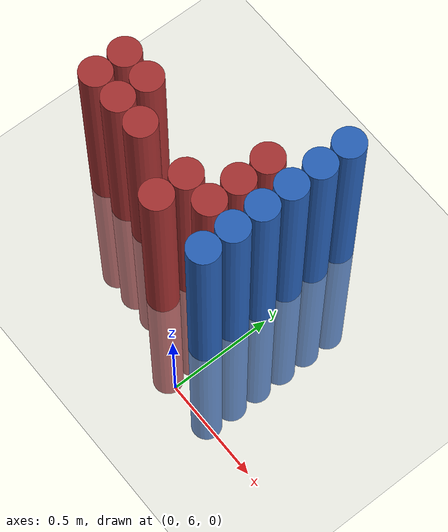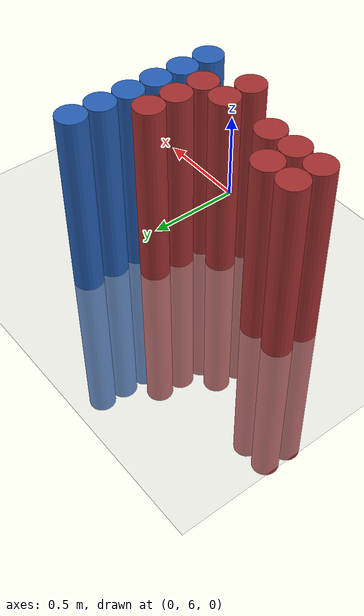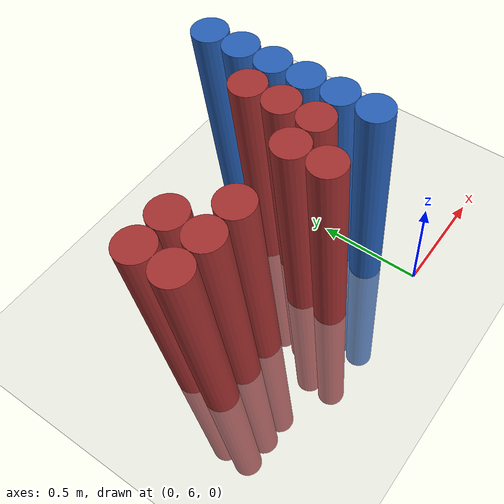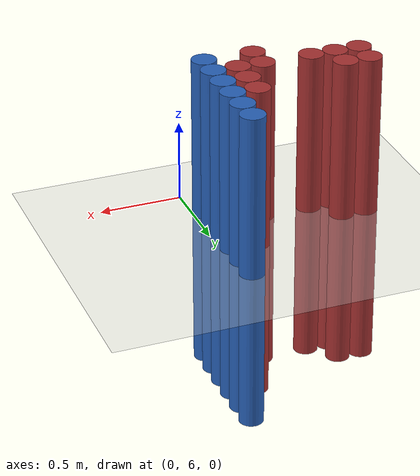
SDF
<sdf version="1.6">
 <world name="default">
  <model name="ground_plane">
   <static>1</static>
   <link name="link">
    <collision name="collision">
     <geometry><plane><normal>0 0 1</normal><size>100 100</size></plane></geometry>
     <surface><friction><ode><mu>100</mu><mu2>50</mu2></ode></friction></surface>
    </collision>
    <visual name="visual">
     <cast_shadows>0</cast_shadows>
     <geometry><plane><normal>0 0 1</normal><size>100 100</size></plane></geometry>
     <material>
      <script><uri>file://media/materials/scripts/gazebo.material</uri><name>Gazebo/Grey</name></script>
     </material>
    </visual>
   </link>
  </model>
  <model name="unit_cylinder_185">
   <static>1</static>
   <pose>-0.975000 6.375000 0.000000 0.000000 0.000000 0.000000</pose>
   <link name="link">
    <inertial>
     <mass>1</mass>
     <inertia><ixx>0.145833</ixx><ixy>0</ixy><ixz>0</ixz><iyy>0.145833</iyy><iyz>0</iyz><izz>0.125</izz></inertia>
    </inertial>
    <collision name="collision">
     <geometry><cylinder><radius>0.075000</radius><length>2</length></cylinder></geometry>
    </collision>
    <visual name="visual">
     <geometry><cylinder><radius>0.075000</radius><length>2</length></cylinder></geometry>
     <material>
      <ambient>0.648000 0.192000 0.192000 1</ambient>
      <diffuse>0.648000 0.192000 0.192000 1</diffuse>
     </material>
     <material>
      <script><name>Gazebo/Grey</name><uri>file://media/materials/scripts/gazebo.material</uri></script>
     </material>
    </visual>
   </link>
  </model>
  <model name="unit_cylinder_186">
   <static>1</static>
   <pose>-0.975000 6.525000 0.000000 0.000000 0.000000 0.000000</pose>
   <link name="link">
    <inertial>
     <mass>1</mass>
     <inertia><ixx>0.145833</ixx><ixy>0</ixy><ixz>0</ixz><iyy>0.145833</iyy><iyz>0</iyz><izz>0.125</izz></inertia>
    </inertial>
    <collision name="collision">
     <geometry><cylinder><radius>0.075000</radius><length>2</length></cylinder></geometry>
    </collision>
    <visual name="visual">
     <geometry><cylinder><radius>0.075000</radius><length>2</length></cylinder></geometry>
     <material>
      <ambient>0.648000 0.192000 0.192000 1</ambient>
      <diffuse>0.648000 0.192000 0.192000 1</diffuse>
     </material>
     <material>
      <script><name>Gazebo/Grey</name><uri>file://media/materials/scripts/gazebo.material</uri></script>
     </material>
    </visual>
   </link>
  </model>
  <model name="unit_cylinder_192">
   <static>1</static>
   <pose>-0.825000 6.375000 0.000000 0.000000 0.000000 0.000000</pose>
   <link name="link">
    <inertial>
     <mass>1</mass>
     <inertia><ixx>0.145833</ixx><ixy>0</ixy><ixz>0</ixz><iyy>0.145833</iyy><iyz>0</iyz><izz>0.125</izz></inertia>
    </inertial>
    <collision name="collision">
     <geometry><cylinder><radius>0.075000</radius><length>2</length></cylinder></geometry>
    </collision>
    <visual name="visual">
     <geometry><cylinder><radius>0.075000</radius><length>2</length></cylinder></geometry>
     <material>
      <ambient>0.648000 0.192000 0.192000 1</ambient>
      <diffuse>0.648000 0.192000 0.192000 1</diffuse>
     </material>
     <material>
      <script><name>Gazebo/Grey</name><uri>file://media/materials/scripts/gazebo.material</uri></script>
     </material>
    </visual>
   </link>
  </model>
  <model name="unit_cylinder_193">
   <static>1</static>
   <pose>-0.825000 6.525000 0.000000 0.000000 0.000000 0.000000</pose>
   <link name="link">
    <inertial>
     <mass>1</mass>
     <inertia><ixx>0.145833</ixx><ixy>0</ixy><ixz>0</ixz><iyy>0.145833</iyy><iyz>0</iyz><izz>0.125</izz></inertia>
    </inertial>
    <collision name="collision">
     <geometry><cylinder><radius>0.075000</radius><length>2</length></cylinder></geometry>
    </collision>
    <visual name="visual">
     <geometry><cylinder><radius>0.075000</radius><length>2</length></cylinder></geometry>
     <material>
      <ambient>0.648000 0.192000 0.192000 1</ambient>
      <diffuse>0.648000 0.192000 0.192000 1</diffuse>
     </material>
     <material>
      <script><name>Gazebo/Grey</name><uri>file://media/materials/scripts/gazebo.material</uri></script>
     </material>
    </visual>
   </link>
  </model>
  <model name="unit_cylinder_199">
   <static>1</static>
   <pose>-0.675000 6.375000 0.000000 0.000000 0.000000 0.000000</pose>
   <link name="link">
    <inertial>
     <mass>1</mass>
     <inertia><ixx>0.145833</ixx><ixy>0</ixy><ixz>0</ixz><iyy>0.145833</iyy><iyz>0</iyz><izz>0.125</izz></inertia>
    </inertial>
    <collision name="collision">
     <geometry><cylinder><radius>0.075000</radius><length>2</length></cylinder></geometry>
    </collision>
    <visual name="visual">
     <geometry><cylinder><radius>0.075000</radius><length>2</length></cylinder></geometry>
     <material>
      <ambient>0.648000 0.192000 0.192000 1</ambient>
      <diffuse>0.648000 0.192000 0.192000 1</diffuse>
     </material>
     <material>
      <script><name>Gazebo/Grey</name><uri>file://media/materials/scripts/gazebo.material</uri></script>
     </material>
    </visual>
   </link>
  </model>
  <model name="unit_cylinder_208">
   <static>1</static>
   <pose>-0.375000 6.225000 0.000000 0.000000 0.000000 0.000000</pose>
   <link name="link">
    <inertial>
     <mass>1</mass>
     <inertia><ixx>0.145833</ixx><ixy>0</ixy><ixz>0</ixz><iyy>0.145833</iyy><iyz>0</iyz><izz>0.125</izz></inertia>
    </inertial>
    <collision name="collision">
     <geometry><cylinder><radius>0.075000</radius><length>2</length></cylinder></geometry>
    </collision>
    <visual name="visual">
     <geometry><cylinder><radius>0.075000</radius><length>2</length></cylinder></geometry>
     <material>
      <ambient>0.648000 0.192000 0.192000 1</ambient>
      <diffuse>0.648000 0.192000 0.192000 1</diffuse>
     </material>
     <material>
      <script><name>Gazebo/Grey</name><uri>file://media/materials/scripts/gazebo.material</uri></script>
     </material>
    </visual>
   </link>
  </model>
  <model name="unit_cylinder_209">
   <static>1</static>
   <pose>-0.375000 6.375000 0.000000 0.000000 0.000000 0.000000</pose>
   <link name="link">
    <inertial>
     <mass>1</mass>
     <inertia><ixx>0.145833</ixx><ixy>0</ixy><ixz>0</ixz><iyy>0.145833</iyy><iyz>0</iyz><izz>0.125</izz></inertia>
    </inertial>
    <collision name="collision">
     <geometry><cylinder><radius>0.075000</radius><length>2</length></cylinder></geometry>
    </collision>
    <visual name="visual">
     <geometry><cylinder><radius>0.075000</radius><length>2</length></cylinder></geometry>
     <material>
      <ambient>0.648000 0.192000 0.192000 1</ambient>
      <diffuse>0.648000 0.192000 0.192000 1</diffuse>
     </material>
     <material>
      <script><name>Gazebo/Grey</name><uri>file://media/materials/scripts/gazebo.material</uri></script>
     </material>
    </visual>
   </link>
  </model>
  <model name="unit_cylinder_216">
   <static>1</static>
   <pose>-0.225000 6.375000 0.000000 0.000000 0.000000 0.000000</pose>
   <link name="link">
    <inertial>
     <mass>1</mass>
     <inertia><ixx>0.145833</ixx><ixy>0</ixy><ixz>0</ixz><iyy>0.145833</iyy><iyz>0</iyz><izz>0.125</izz></inertia>
    </inertial>
    <collision name="collision">
     <geometry><cylinder><radius>0.075000</radius><length>2</length></cylinder></geometry>
    </collision>
    <visual name="visual">
     <geometry><cylinder><radius>0.075000</radius><length>2</length></cylinder></geometry>
     <material>
      <ambient>0.648000 0.192000 0.192000 1</ambient>
      <diffuse>0.648000 0.192000 0.192000 1</diffuse>
     </material>
     <material>
      <script><name>Gazebo/Grey</name><uri>file://media/materials/scripts/gazebo.material</uri></script>
     </material>
    </visual>
   </link>
  </model>
  <model name="unit_cylinder_217">
   <static>1</static>
   <pose>-0.225000 6.525000 0.000000 0.000000 0.000000 0.000000</pose>
   <link name="link">
    <inertial>
     <mass>1</mass>
     <inertia><ixx>0.145833</ixx><ixy>0</ixy><ixz>0</ixz><iyy>0.145833</iyy><iyz>0</iyz><izz>0.125</izz></inertia>
    </inertial>
    <collision name="collision">
     <geometry><cylinder><radius>0.075000</radius><length>2</length></cylinder></geometry>
    </collision>
    <visual name="visual">
     <geometry><cylinder><radius>0.075000</radius><length>2</length></cylinder></geometry>
     <material>
      <ambient>0.648000 0.192000 0.192000 1</ambient>
      <diffuse>0.648000 0.192000 0.192000 1</diffuse>
     </material>
     <material>
      <script><name>Gazebo/Grey</name><uri>file://media/materials/scripts/gazebo.material</uri></script>
     </material>
    </visual>
   </link>
  </model>
  <model name="unit_cylinder_218">
   <static>1</static>
   <pose>-0.225000 6.675000 0.000000 0.000000 0.000000 0.000000</pose>
   <link name="link">
    <inertial>
     <mass>1</mass>
     <inertia><ixx>0.145833</ixx><ixy>0</ixy><ixz>0</ixz><iyy>0.145833</iyy><iyz>0</iyz><izz>0.125</izz></inertia>
    </inertial>
    <collision name="collision">
     <geometry><cylinder><radius>0.075000</radius><length>2</length></cylinder></geometry>
    </collision>
    <visual name="visual">
     <geometry><cylinder><radius>0.075000</radius><length>2</length></cylinder></geometry>
     <material>
      <ambient>0.648000 0.192000 0.192000 1</ambient>
      <diffuse>0.648000 0.192000 0.192000 1</diffuse>
     </material>
     <material>
      <script><name>Gazebo/Grey</name><uri>file://media/materials/scripts/gazebo.material</uri></script>
     </material>
    </visual>
   </link>
  </model>
  <model name="unit_cylinder_237">
   <static>1</static>
   <pose>-0.075000 6.225000 0.000000 0.000000 0.000000 0.000000</pose>
   <link name="link">
    <inertial>
     <mass>1</mass>
     <inertia><ixx>0.145833</ixx><ixy>0</ixy><ixz>0</ixz><iyy>0.145833</iyy><iyz>0</iyz><izz>0.125</izz></inertia>
    </inertial>
    <collision name="collision">
     <geometry><cylinder><radius>0.075000</radius><length>2</length></cylinder></geometry>
    </collision>
    <visual name="visual">
     <geometry><cylinder><radius>0.075000</radius><length>2</length></cylinder></geometry>
     <material>
      <ambient>0.152000 0.379000 0.720000 1</ambient>
      <diffuse>0.152000 0.379000 0.720000 1</diffuse>
     </material>
     <material>
      <script><name>Gazebo/Grey</name><uri>file://media/materials/scripts/gazebo.material</uri></script>
     </material>
    </visual>
   </link>
  </model>
  <model name="unit_cylinder_238">
   <static>1</static>
   <pose>-0.075000 6.375000 0.000000 0.000000 0.000000 0.000000</pose>
   <link name="link">
    <inertial>
     <mass>1</mass>
     <inertia><ixx>0.145833</ixx><ixy>0</ixy><ixz>0</ixz><iyy>0.145833</iyy><iyz>0</iyz><izz>0.125</izz></inertia>
    </inertial>
    <collision name="collision">
     <geometry><cylinder><radius>0.075000</radius><length>2</length></cylinder></geometry>
    </collision>
    <visual name="visual">
     <geometry><cylinder><radius>0.075000</radius><length>2</length></cylinder></geometry>
     <material>
      <ambient>0.152000 0.379000 0.720000 1</ambient>
      <diffuse>0.152000 0.379000 0.720000 1</diffuse>
     </material>
     <material>
      <script><name>Gazebo/Grey</name><uri>file://media/materials/scripts/gazebo.material</uri></script>
     </material>
    </visual>
   </link>
  </model>
  <model name="unit_cylinder_239">
   <static>1</static>
   <pose>-0.075000 6.525000 0.000000 0.000000 0.000000 0.000000</pose>
   <link name="link">
    <inertial>
     <mass>1</mass>
     <inertia><ixx>0.145833</ixx><ixy>0</ixy><ixz>0</ixz><iyy>0.145833</iyy><iyz>0</iyz><izz>0.125</izz></inertia>
    </inertial>
    <collision name="collision">
     <geometry><cylinder><radius>0.075000</radius><length>2</length></cylinder></geometry>
    </collision>
    <visual name="visual">
     <geometry><cylinder><radius>0.075000</radius><length>2</length></cylinder></geometry>
     <material>
      <ambient>0.152000 0.379000 0.720000 1</ambient>
      <diffuse>0.152000 0.379000 0.720000 1</diffuse>
     </material>
     <material>
      <script><name>Gazebo/Grey</name><uri>file://media/materials/scripts/gazebo.material</uri></script>
     </material>
    </visual>
   </link>
  </model>
  <model name="unit_cylinder_240">
   <static>1</static>
   <pose>-0.075000 6.675000 0.000000 0.000000 0.000000 0.000000</pose>
   <link name="link">
    <inertial>
     <mass>1</mass>
     <inertia><ixx>0.145833</ixx><ixy>0</ixy><ixz>0</ixz><iyy>0.145833</iyy><iyz>0</iyz><izz>0.125</izz></inertia>
    </inertial>
    <collision name="collision">
     <geometry><cylinder><radius>0.075000</radius><length>2</length></cylinder></geometry>
    </collision>
    <visual name="visual">
     <geometry><cylinder><radius>0.075000</radius><length>2</length></cylinder></geometry>
     <material>
      <ambient>0.152000 0.379000 0.720000 1</ambient>
      <diffuse>0.152000 0.379000 0.720000 1</diffuse>
     </material>
     <material>
      <script><name>Gazebo/Grey</name><uri>file://media/materials/scripts/gazebo.material</uri></script>
     </material>
    </visual>
   </link>
  </model>
  <model name="unit_cylinder_241">
   <static>1</static>
   <pose>-0.075000 6.825000 0.000000 0.000000 0.000000 0.000000</pose>
   <link name="link">
    <inertial>
     <mass>1</mass>
     <inertia><ixx>0.145833</ixx><ixy>0</ixy><ixz>0</ixz><iyy>0.145833</iyy><iyz>0</iyz><izz>0.125</izz></inertia>
    </inertial>
    <collision name="collision">
     <geometry><cylinder><radius>0.075000</radius><length>2</length></cylinder></geometry>
    </collision>
    <visual name="visual">
     <geometry><cylinder><radius>0.075000</radius><length>2</length></cylinder></geometry>
     <material>
      <ambient>0.152000 0.379000 0.720000 1</ambient>
      <diffuse>0.152000 0.379000 0.720000 1</diffuse>
     </material>
     <material>
      <script><name>Gazebo/Grey</name><uri>file://media/materials/scripts/gazebo.material</uri></script>
     </material>
    </visual>
   </link>
  </model>
  <model name="unit_cylinder_242">
   <static>1</static>
   <pose>-0.075000 6.975000 0.000000 0.000000 0.000000 0.000000</pose>
   <link name="link">
    <inertial>
     <mass>1</mass>
     <inertia><ixx>0.145833</ixx><ixy>0</ixy><ixz>0</ixz><iyy>0.145833</iyy><iyz>0</iyz><izz>0.125</izz></inertia>
    </inertial>
    <collision name="collision">
     <geometry><cylinder><radius>0.075000</radius><length>2</length></cylinder></geometry>
    </collision>
    <visual name="visual">
     <geometry><cylinder><radius>0.075000</radius><length>2</length></cylinder></geometry>
     <material>
      <ambient>0.152000 0.379000 0.720000 1</ambient>
      <diffuse>0.152000 0.379000 0.720000 1</diffuse>
     </material>
     <material>
      <script><name>Gazebo/Grey</name><uri>file://media/materials/scripts/gazebo.material</uri></script>
     </material>
    </visual>
   </link>
  </model>
 </world>
</sdf>
